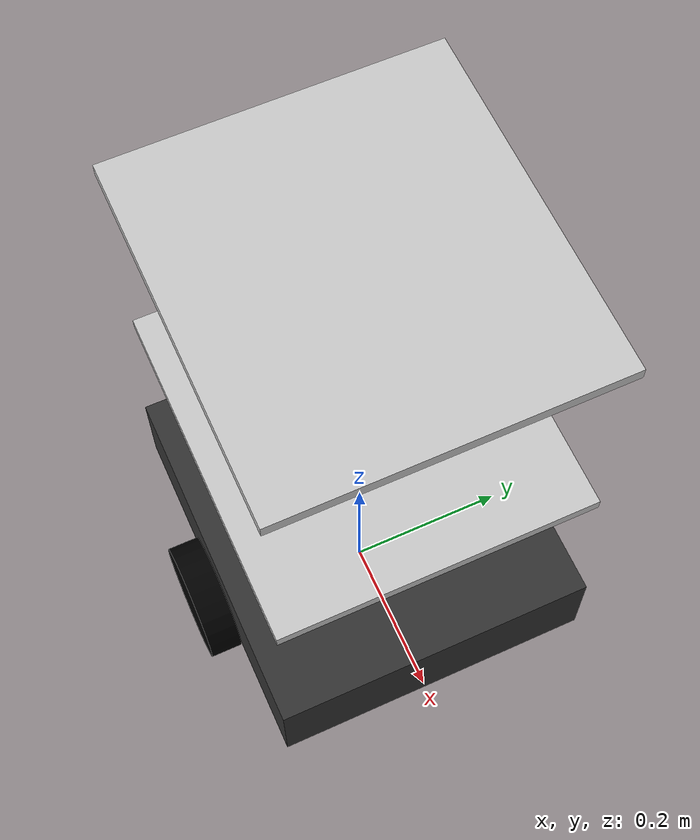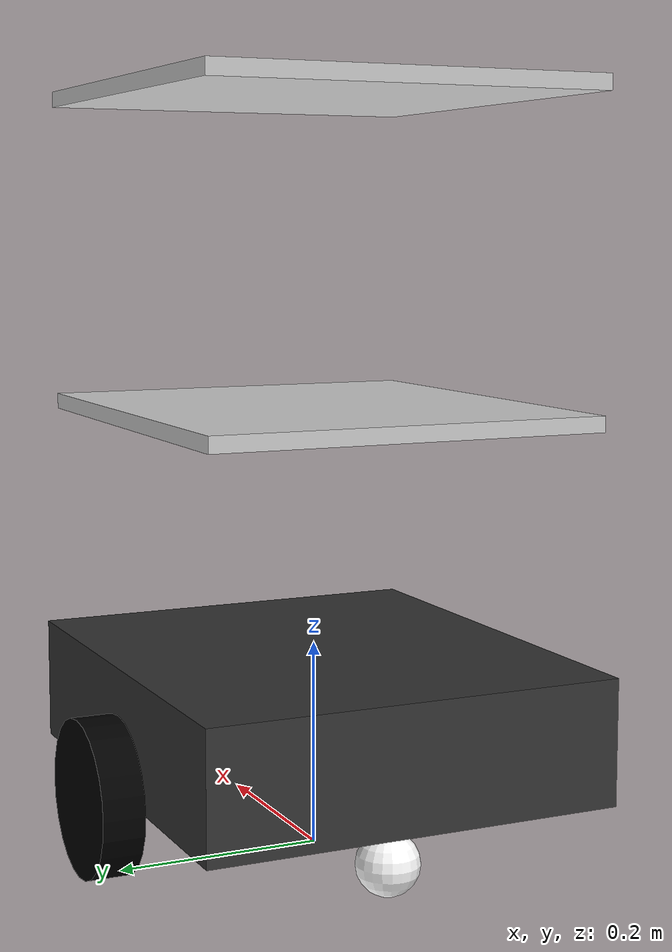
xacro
<?xml version="1.0"?>
<robot xmlns:xacro="http://www.ros.org/wiki/xacro">

    <!-- ==================== PROPERTIES ==================== -->
    <xacro:property name="base_length" value="0.45"/>
    <xacro:property name="base_width" value="0.40"/>
    <xacro:property name="base_height" value="0.12"/>
    <xacro:property name="base_mass" value="10.0"/>

    <xacro:property name="wheel_radius" value="0.075"/>
    <xacro:property name="wheel_length" value="0.04"/>
    <xacro:property name="wheel_mass" value="0.8"/>
    <xacro:property name="wheel_offset_y" value="0.22"/>

    <xacro:property name="caster_radius" value="0.03"/>
    <xacro:property name="caster_mass" value="0.2"/>
    <xacro:property name="caster_offset_x" value="0.16"/>

    <xacro:property name="tray_length" value="0.42"/>
    <xacro:property name="tray_width" value="0.38"/>
    <xacro:property name="tray_height" value="0.015"/>

    <!-- ==================== MACROS INERTIAL ==================== -->
    <xacro:macro name="inertial_box" params="mass x y z *origin">
        <inertial>
            <xacro:insert_block name="origin"/>
            <mass value="${mass}"/>
            <inertia ixx="${(1/12) * mass * (y*y + z*z)}" ixy="0.0" ixz="0.0"
                     iyy="${(1/12) * mass * (x*x + z*z)}" iyz="0.0"
                     izz="${(1/12) * mass * (x*x + y*y)}"/>
        </inertial>
    </xacro:macro>

    <xacro:macro name="inertial_cylinder" params="mass radius length *origin">
        <inertial>
            <xacro:insert_block name="origin"/>
            <mass value="${mass}"/>
            <inertia ixx="${(1/12) * mass * (3*radius*radius + length*length)}" ixy="0.0" ixz="0.0"
                     iyy="${(1/12) * mass * (3*radius*radius + length*length)}" iyz="0.0"
                     izz="${(1/2) * mass * (radius*radius)}"/>
        </inertial>
    </xacro:macro>

    <!-- ==================== BASE FOOTPRINT & LINK ==================== -->
    <link name="base_footprint"/>

    <joint name="base_joint" type="fixed">
        <parent link="base_footprint"/>
        <child link="base_link"/>
        <origin xyz="0 0 ${wheel_radius}" rpy="0 0 0"/>
    </joint>

    <link name="base_link">
        <visual>
            <origin xyz="0 0 ${base_height/2}" rpy="0 0 0"/>
            <geometry>
                <box size="${base_length} ${base_width} ${base_height}"/>
            </geometry>
            <material name="chassis_color">
                <color rgba="0.2 0.2 0.2 1.0"/>
            </material>
        </visual>
        <collision>
            <origin xyz="0 0 ${base_height/2}" rpy="0 0 0"/>
            <geometry>
                <box size="${base_length} ${base_width} ${base_height}"/>
            </geometry>
        </collision>
        <xacro:inertial_box mass="${base_mass}" x="${base_length}" y="${base_width}" z="${base_height}">
            <origin xyz="0 0 ${base_height/2}" rpy="0 0 0"/>
        </xacro:inertial_box>
    </link>

    <!-- ==================== BÁNH XE CHỦ ĐỘNG ==================== -->
    <xacro:macro name="wheel" params="prefix y_reflect">
        <joint name="${prefix}_wheel_joint" type="continuous">
            <parent link="base_link"/>
            <child link="${prefix}_wheel"/>
            <origin xyz="0 ${y_reflect * wheel_offset_y} 0" rpy="-1.5708 0 0"/>
            <axis xyz="0 0 1"/>
        </joint>

        <link name="${prefix}_wheel">
            <visual>
                <geometry>
                    <cylinder radius="${wheel_radius}" length="${wheel_length}"/>
                </geometry>
                <material name="black">
                    <color rgba="0.0 0.0 0.0 1.0"/>
                </material>
            </visual>
            <collision>
                <geometry>
                    <cylinder radius="${wheel_radius}" length="${wheel_length}"/>
                </geometry>
            </collision>
            <xacro:inertial_cylinder mass="${wheel_mass}" radius="${wheel_radius}" length="${wheel_length}">
                <origin xyz="0 0 0" rpy="0 0 0"/>
            </xacro:inertial_cylinder>
        </link>
    </xacro:macro>

    <xacro:wheel prefix="left" y_reflect="1"/>
    <xacro:wheel prefix="right" y_reflect="-1"/>

    <!-- ==================== BÁNH CASTER ==================== -->
    <xacro:macro name="caster" params="prefix x_reflect">
        <joint name="${prefix}_caster_joint" type="fixed">
            <parent link="base_link"/>
            <child link="${prefix}_caster"/>
            <origin xyz="${x_reflect * caster_offset_x} 0 ${caster_radius - wheel_radius}" rpy="0 0 0"/>
        </joint>

        <link name="${prefix}_caster">
            <visual>
                <geometry>
                    <sphere radius="${caster_radius}"/>
                </geometry>
                <material name="white">
                    <color rgba="1.0 1.0 1.0 1.0"/>
                </material>
            </visual>
            <collision>
                <geometry>
                    <sphere radius="${caster_radius}"/>
                </geometry>
            </collision>
            <inertial>
                <mass value="${caster_mass}"/>
                <inertia ixx="0.0001" ixy="0" ixz="0" iyy="0.0001" iyz="0" izz="0.0001"/>
            </inertial>
        </link>
    </xacro:macro>

    <xacro:caster prefix="front" x_reflect="1"/>
    <xacro:caster prefix="rear" x_reflect="-1"/>

    <!-- ==================== KHAY THỨC ĂN ==================== -->
    <xacro:macro name="tray" params="prefix z_offset">
        <joint name="${prefix}_tray_joint" type="fixed">
            <parent link="base_link"/>
            <child link="${prefix}_tray"/>
            <origin xyz="0 0 ${z_offset}" rpy="0 0 0"/>
        </joint>

        <link name="${prefix}_tray">
            <visual>
                <geometry>
                    <box size="${tray_length} ${tray_width} ${tray_height}"/>
                </geometry>
                <material name="tray_mat">
                    <color rgba="0.8 0.8 0.8 0.9"/>
                </material>
            </visual>
            <collision>
                <geometry>
                    <box size="${tray_length} ${tray_width} ${tray_height}"/>
                </geometry>
            </collision>
        </link>
    </xacro:macro>
    <gazebo reference="left_wheel">
  <mu1>100.0</mu1>
  <mu2>100.0</mu2>
  <kp>1000000.0</kp>
  <kd>1.0</kd>
</gazebo>

<gazebo reference="right_wheel">
  <mu1>100.0</mu1>
  <mu2>100.0</mu2>
  <kp>1000000.0</kp>
  <kd>1.0</kd>
</gazebo>

     <gazebo reference="base_link">
  <mu1>0.8</mu1>
  <mu2>0.8</mu2>
  <kp>1000000.0</kp>
  <kd>1.0</kd>
</gazebo>

    <xacro:tray prefix="tray_level_1" z_offset="0.35"/>
    <xacro:tray prefix="tray_level_2" z_offset="0.65"/>

</robot>
